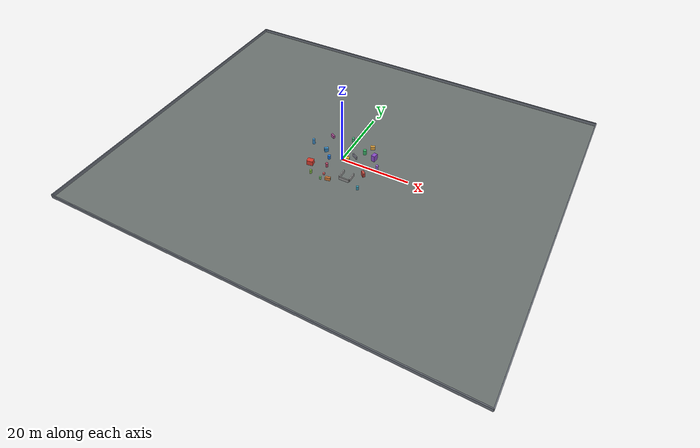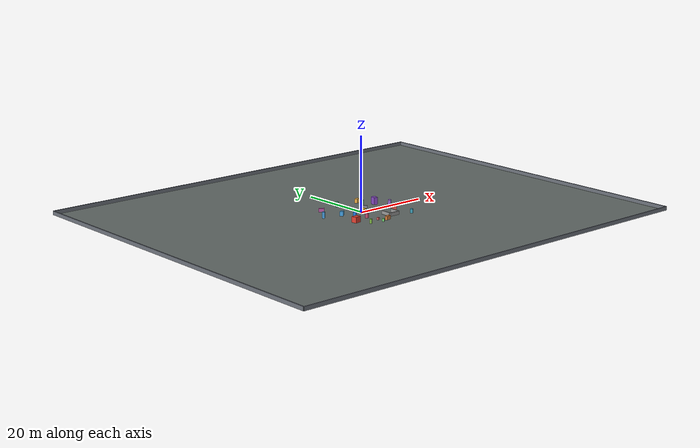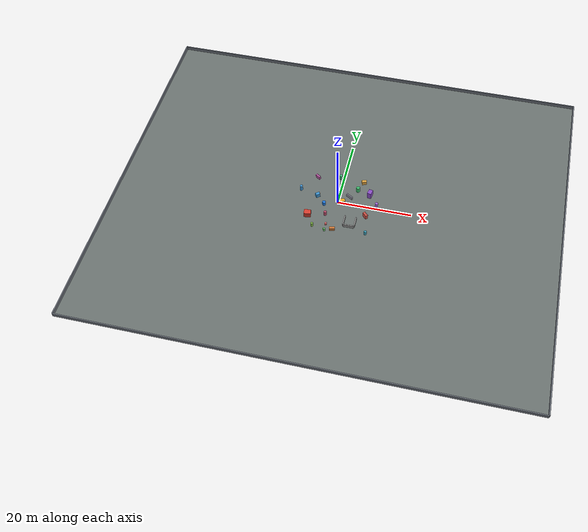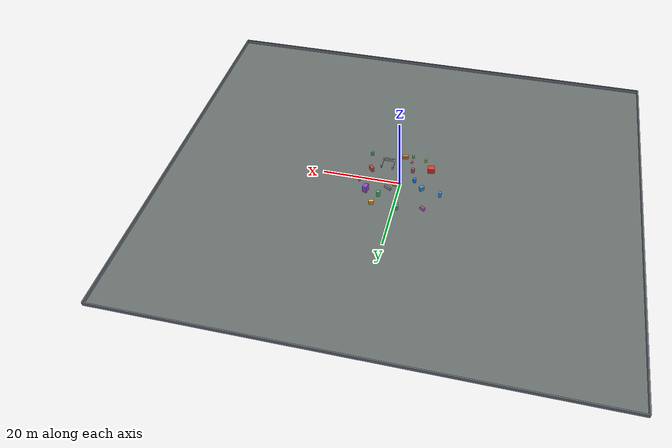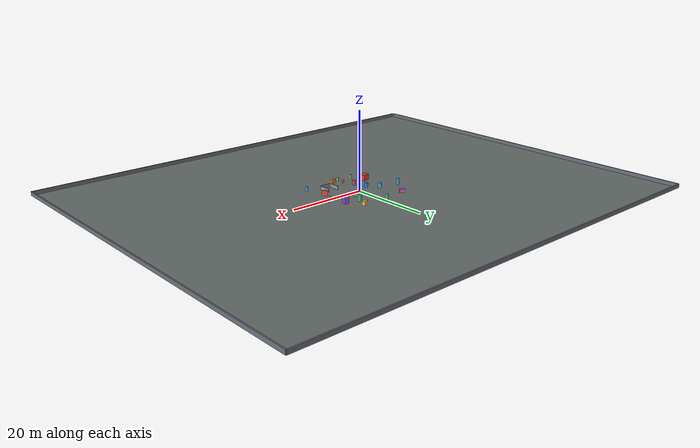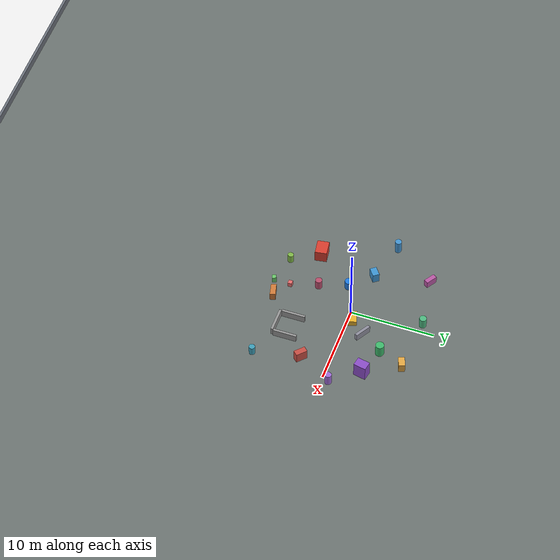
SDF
<sdf version="1.7">
  <world name="mid360_mapping_field">
    <physics type="ode">
      <max_step_size>0.002</max_step_size>
      <real_time_update_rate>500</real_time_update_rate>
      <real_time_factor>1</real_time_factor>
    </physics>

    <light name="sun" type="directional">
      <cast_shadows>true</cast_shadows>
      <pose>0 0 20 0 0 0</pose>
      <diffuse>0.8 0.8 0.8 1</diffuse>
      <specular>0.2 0.2 0.2 1</specular>
      <attenuation>
        <range>2000</range>
        <constant>0.9</constant>
        <linear>0.01</linear>
        <quadratic>0.001</quadratic>
      </attenuation>
      <direction>-0.5 0.1 -0.9</direction>
    </light>

    <!-- 地面 -->
    <model name="large_ground">
      <static>true</static>
      <pose>0 0 -0.01 0 0 0</pose>
      <link name="link">
        <collision name="collision">
          <geometry>
            <box>
              <size>120 100 0.02</size>
            </box>
          </geometry>
        </collision>
        <visual name="visual">
          <geometry>
            <box>
              <size>120 100 0.02</size>
            </box>
          </geometry>
          <material>
            <ambient>0.36 0.39 0.38 1</ambient>
            <diffuse>0.42 0.45 0.44 1</diffuse>
          </material>
        </visual>
      </link>
    </model>

    <!-- 四面墙 -->
    <model name="north_wall">
      <static>true</static>
      <pose>0 50 0.5 0 0 0</pose>
      <link name="link">
        <collision name="collision"><geometry><box><size>120 0.3 1.0</size></box></geometry></collision>
        <visual name="visual">
          <geometry><box><size>120 0.3 1.0</size></box></geometry>
          <material><ambient>0.28 0.29 0.31 1</ambient><diffuse>0.42 0.44 0.48 1</diffuse></material>
        </visual>
      </link>
    </model>
    <model name="south_wall">
      <static>true</static>
      <pose>0 -50 0.5 0 0 0</pose>
      <link name="link">
        <collision name="collision"><geometry><box><size>120 0.3 1.0</size></box></geometry></collision>
        <visual name="visual">
          <geometry><box><size>120 0.3 1.0</size></box></geometry>
          <material><ambient>0.28 0.29 0.31 1</ambient><diffuse>0.42 0.44 0.48 1</diffuse></material>
        </visual>
      </link>
    </model>
    <model name="east_wall">
      <static>true</static>
      <pose>60 0 0.5 0 0 0</pose>
      <link name="link">
        <collision name="collision"><geometry><box><size>0.3 100 1.0</size></box></geometry></collision>
        <visual name="visual">
          <geometry><box><size>0.3 100 1.0</size></box></geometry>
          <material><ambient>0.28 0.29 0.31 1</ambient><diffuse>0.42 0.44 0.48 1</diffuse></material>
        </visual>
      </link>
    </model>
    <model name="west_wall">
      <static>true</static>
      <pose>-60 0 0.5 0 0 0</pose>
      <link name="link">
        <collision name="collision"><geometry><box><size>0.3 100 1.0</size></box></geometry></collision>
        <visual name="visual">
          <geometry><box><size>0.3 100 1.0</size></box></geometry>
          <material><ambient>0.28 0.29 0.31 1</ambient><diffuse>0.42 0.44 0.48 1</diffuse></material>
        </visual>
      </link>
    </model>

    <!-- ========== 3D 障碍物（用于验证 FAST-LIO 三维建图） ========== -->

    <!-- 大箱体（西南） -->
    <model name="box_large_sw">
      <static>true</static>
      <pose>-7 -6 0.75 0 0 0.15</pose>
      <link name="link">
        <collision name="collision"><geometry><box><size>1.8 1.4 1.5</size></box></geometry></collision>
        <visual name="visual">
          <geometry><box><size>1.8 1.4 1.5</size></box></geometry>
          <material><ambient>0.65 0.18 0.14 1</ambient><diffuse>0.85 0.24 0.18 1</diffuse></material>
        </visual>
      </link>
    </model>

    <!-- 圆柱（西侧） -->
    <model name="cylinder_west">
      <static>true</static>
      <pose>-3.5 -1.5 0.55 0 0 0</pose>
      <link name="link">
        <collision name="collision"><geometry><cylinder><radius>0.45</radius><length>1.1</length></cylinder></geometry></collision>
        <visual name="visual">
          <geometry><cylinder><radius>0.45</radius><length>1.1</length></cylinder></geometry>
          <material><ambient>0.10 0.33 0.60 1</ambient><diffuse>0.12 0.48 0.88 1</diffuse></material>
        </visual>
      </link>
    </model>

    <!-- 矮箱（中央） -->
    <model name="box_low_center">
      <static>true</static>
      <pose>1.0 0.5 0.35 0 0 0.3</pose>
      <link name="link">
        <collision name="collision"><geometry><box><size>1.6 1.0 0.7</size></box></geometry></collision>
        <visual name="visual">
          <geometry><box><size>1.6 1.0 0.7</size></box></geometry>
          <material><ambient>0.70 0.55 0.12 1</ambient><diffuse>0.92 0.70 0.16 1</diffuse></material>
        </visual>
      </link>
    </model>

    <!-- 高圆柱（东侧） -->
    <model name="cylinder_tall_east">
      <static>true</static>
      <pose>4.5 5.0 0.75 0 0 0</pose>
      <link name="link">
        <collision name="collision"><geometry><cylinder><radius>0.5</radius><length>1.5</length></cylinder></geometry></collision>
        <visual name="visual">
          <geometry><cylinder><radius>0.5</radius><length>1.5</length></cylinder></geometry>
          <material><ambient>0.20 0.52 0.30 1</ambient><diffuse>0.24 0.72 0.42 1</diffuse></material>
        </visual>
      </link>
    </model>

    <!-- 高箱体（东北） -->
    <model name="box_tall_ne">
      <static>true</static>
      <pose>8.0 4.0 0.95 0 0 -0.2</pose>
      <link name="link">
        <collision name="collision"><geometry><box><size>1.1 1.5 1.9</size></box></geometry></collision>
        <visual name="visual">
          <geometry><box><size>1.1 1.5 1.9</size></box></geometry>
          <material><ambient>0.38 0.20 0.58 1</ambient><diffuse>0.54 0.30 0.78 1</diffuse></material>
        </visual>
      </link>
    </model>

    <!-- U 形结构（南侧，测试 FAST-LIO 回环） -->
    <model name="u_shape_left">
      <static>true</static>
      <pose>3.0 -6.0 0.45 0 0 0</pose>
      <link name="link">
        <collision name="collision"><geometry><box><size>0.3 2.8 0.9</size></box></geometry></collision>
        <visual name="visual">
          <geometry><box><size>0.3 2.8 0.9</size></box></geometry>
          <material><ambient>0.48 0.48 0.48 1</ambient><diffuse>0.58 0.58 0.58 1</diffuse></material>
        </visual>
      </link>
    </model>
    <model name="u_shape_right">
      <static>true</static>
      <pose>6.0 -6.0 0.45 0 0 0</pose>
      <link name="link">
        <collision name="collision"><geometry><box><size>0.3 2.8 0.9</size></box></geometry></collision>
        <visual name="visual">
          <geometry><box><size>0.3 2.8 0.9</size></box></geometry>
          <material><ambient>0.48 0.48 0.48 1</ambient><diffuse>0.58 0.58 0.58 1</diffuse></material>
        </visual>
      </link>
    </model>
    <model name="u_shape_back">
      <static>true</static>
      <pose>4.5 -7.6 0.45 0 0 0</pose>
      <link name="link">
        <collision name="collision"><geometry><box><size>3.0 0.3 0.9</size></box></geometry></collision>
        <visual name="visual">
          <geometry><box><size>3.0 0.3 0.9</size></box></geometry>
          <material><ambient>0.48 0.48 0.48 1</ambient><diffuse>0.58 0.58 0.58 1</diffuse></material>
        </visual>
      </link>
    </model>

    <!-- 小障碍物群（南侧通道） -->
    <model name="small_block_a">
      <static>true</static>
      <pose>-1.5 -8.0 0.30 0 0 0</pose>
      <link name="link">
        <collision name="collision"><geometry><box><size>0.5 0.5 0.6</size></box></geometry></collision>
        <visual name="visual">
          <geometry><box><size>0.5 0.5 0.6</size></box></geometry>
          <material><ambient>0.70 0.30 0.30 1</ambient><diffuse>0.90 0.42 0.42 1</diffuse></material>
        </visual>
      </link>
    </model>
    <model name="small_block_b">
      <static>true</static>
      <pose>-1.5 -10.0 0.40 0 0 0.4</pose>
      <link name="link">
        <collision name="collision"><geometry><box><size>0.5 0.5 0.8</size></box></geometry></collision>
        <visual name="visual">
          <geometry><box><size>0.5 0.5 0.8</size></box></geometry>
          <material><ambient>0.30 0.60 0.30 1</ambient><diffuse>0.42 0.78 0.42 1</diffuse></material>
        </visual>
      </link>
    </model>

    <!-- ========== 新增分布式障碍物：让 3D 建图随车推进更明显 ========== -->

    <model name="cylinder_northwest_tall">
      <static>true</static>
      <pose>-10.7 2.2 0.80 0 0 0</pose>
      <link name="link">
        <collision name="collision"><geometry><cylinder><radius>0.38</radius><length>1.6</length></cylinder></geometry></collision>
        <visual name="visual">
          <geometry><cylinder><radius>0.38</radius><length>1.6</length></cylinder></geometry>
          <material><ambient>0.20 0.42 0.62 1</ambient><diffuse>0.26 0.58 0.82 1</diffuse></material>
        </visual>
      </link>
    </model>

    <model name="box_northwest_low">
      <static>true</static>
      <pose>-7.2 7.3 0.45 0 0 -0.55</pose>
      <link name="link">
        <collision name="collision"><geometry><box><size>1.4 0.55 0.9</size></box></geometry></collision>
        <visual name="visual">
          <geometry><box><size>1.4 0.55 0.9</size></box></geometry>
          <material><ambient>0.52 0.24 0.46 1</ambient><diffuse>0.72 0.34 0.64 1</diffuse></material>
        </visual>
      </link>
    </model>

    <model name="cylinder_north_mid">
      <static>true</static>
      <pose>-1.0 8.4 0.65 0 0 0</pose>
      <link name="link">
        <collision name="collision"><geometry><cylinder><radius>0.42</radius><length>1.3</length></cylinder></geometry></collision>
        <visual name="visual">
          <geometry><cylinder><radius>0.42</radius><length>1.3</length></cylinder></geometry>
          <material><ambient>0.22 0.52 0.38 1</ambient><diffuse>0.30 0.72 0.50 1</diffuse></material>
        </visual>
      </link>
    </model>

    <model name="box_northeast_gate">
      <static>true</static>
      <pose>5.6 8.0 0.55 0 0 0.35</pose>
      <link name="link">
        <collision name="collision"><geometry><box><size>1.25 0.75 1.1</size></box></geometry></collision>
        <visual name="visual">
          <geometry><box><size>1.25 0.75 1.1</size></box></geometry>
          <material><ambient>0.68 0.48 0.18 1</ambient><diffuse>0.90 0.66 0.26 1</diffuse></material>
        </visual>
      </link>
    </model>

    <model name="cylinder_east_mid">
      <static>true</static>
      <pose>10.4 0.8 0.70 0 0 0</pose>
      <link name="link">
        <collision name="collision"><geometry><cylinder><radius>0.40</radius><length>1.4</length></cylinder></geometry></collision>
        <visual name="visual">
          <geometry><cylinder><radius>0.40</radius><length>1.4</length></cylinder></geometry>
          <material><ambient>0.46 0.30 0.62 1</ambient><diffuse>0.62 0.42 0.84 1</diffuse></material>
        </visual>
      </link>
    </model>

    <model name="box_east_south">
      <static>true</static>
      <pose>8.2 -3.3 0.65 0 0 -0.75</pose>
      <link name="link">
        <collision name="collision"><geometry><box><size>1.4 0.7 1.3</size></box></geometry></collision>
        <visual name="visual">
          <geometry><box><size>1.4 0.7 1.3</size></box></geometry>
          <material><ambient>0.58 0.20 0.18 1</ambient><diffuse>0.78 0.30 0.26 1</diffuse></material>
        </visual>
      </link>
    </model>

    <model name="cylinder_southeast">
      <static>true</static>
      <pose>9.3 -8.8 0.55 0 0 0</pose>
      <link name="link">
        <collision name="collision"><geometry><cylinder><radius>0.36</radius><length>1.1</length></cylinder></geometry></collision>
        <visual name="visual">
          <geometry><cylinder><radius>0.36</radius><length>1.1</length></cylinder></geometry>
          <material><ambient>0.18 0.44 0.52 1</ambient><diffuse>0.24 0.62 0.72 1</diffuse></material>
        </visual>
      </link>
    </model>

    <model name="box_south_mid">
      <static>true</static>
      <pose>0.5 -9.4 0.50 0 0 0.25</pose>
      <link name="link">
        <collision name="collision"><geometry><box><size>1.5 0.65 1.0</size></box></geometry></collision>
        <visual name="visual">
          <geometry><box><size>1.5 0.65 1.0</size></box></geometry>
          <material><ambient>0.60 0.35 0.16 1</ambient><diffuse>0.82 0.48 0.22 1</diffuse></material>
        </visual>
      </link>
    </model>

    <model name="cylinder_southwest_extra">
      <static>true</static>
      <pose>-5.0 -9.2 0.55 0 0 0</pose>
      <link name="link">
        <collision name="collision"><geometry><cylinder><radius>0.34</radius><length>1.1</length></cylinder></geometry></collision>
        <visual name="visual">
          <geometry><cylinder><radius>0.34</radius><length>1.1</length></cylinder></geometry>
          <material><ambient>0.36 0.50 0.20 1</ambient><diffuse>0.50 0.72 0.28 1</diffuse></material>
        </visual>
      </link>
    </model>

    <model name="box_center_left">
      <static>true</static>
      <pose>-5.8 0.9 0.60 0 0 0.65</pose>
      <link name="link">
        <collision name="collision"><geometry><box><size>1.15 0.8 1.2</size></box></geometry></collision>
        <visual name="visual">
          <geometry><box><size>1.15 0.8 1.2</size></box></geometry>
          <material><ambient>0.18 0.42 0.60 1</ambient><diffuse>0.24 0.58 0.82 1</diffuse></material>
        </visual>
      </link>
    </model>

    <model name="cylinder_center_south">
      <static>true</static>
      <pose>-2.4 -4.8 0.60 0 0 0</pose>
      <link name="link">
        <collision name="collision"><geometry><cylinder><radius>0.40</radius><length>1.2</length></cylinder></geometry></collision>
        <visual name="visual">
          <geometry><cylinder><radius>0.40</radius><length>1.2</length></cylinder></geometry>
          <material><ambient>0.52 0.22 0.30 1</ambient><diffuse>0.72 0.30 0.42 1</diffuse></material>
        </visual>
      </link>
    </model>

    <model name="short_wall_center_east">
      <static>true</static>
      <pose>2.7 2.3 0.45 0 0 1.05</pose>
      <link name="link">
        <collision name="collision"><geometry><box><size>0.35 2.0 0.9</size></box></geometry></collision>
        <visual name="visual">
          <geometry><box><size>0.35 2.0 0.9</size></box></geometry>
          <material><ambient>0.42 0.42 0.46 1</ambient><diffuse>0.56 0.56 0.62 1</diffuse></material>
        </visual>
      </link>
    </model>

    <gui fullscreen="0">
      <camera name="user_camera">
        <pose>-16 -16 8 0 0.45 0.785398</pose>
        <view_controller>orbit</view_controller>
        <projection_type>perspective</projection_type>
      </camera>
    </gui>
  </world>
</sdf>
